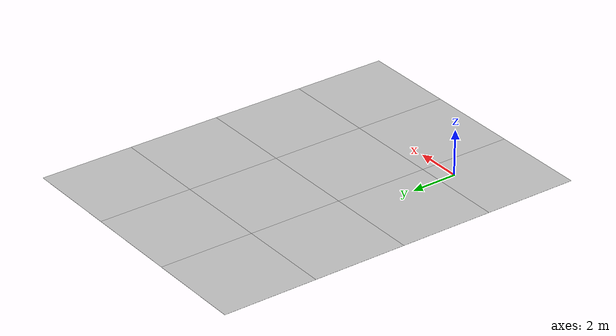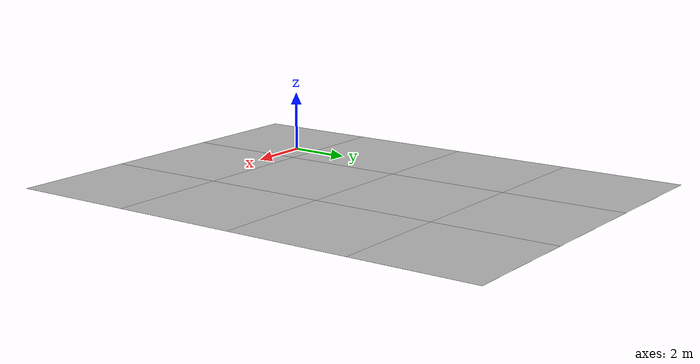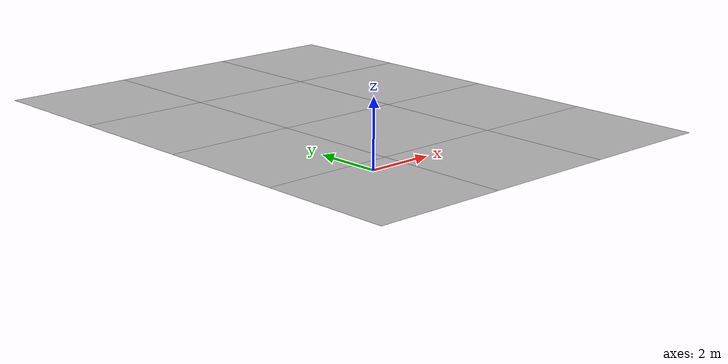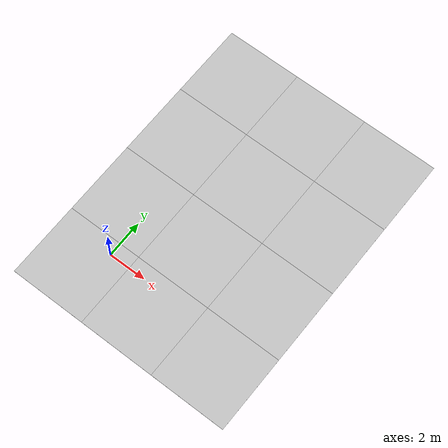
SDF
<sdf version='1.6'><world name='default'>
    <light name='sun_light' type='directional'>
      <pose frame=''>0 0 10 0 -0 0</pose>
      <diffuse>0.5 0.5 0.5 1</diffuse>
      <specular>0.1 0.1 0.1 1</specular>
      <direction>0.1 0.1 -0.9</direction>
      <attenuation>
        <range>20</range>
        <constant>0.5</constant>
        <linear>0.01</linear>
        <quadratic>0.001</quadratic>
      </attenuation>
      <cast_shadows>1</cast_shadows>
    </light>

    <model name='Tile/0-0'>
      <static>1</static>
      <link name='link'>
        <collision name='collision'>
          <geometry>
            <plane>
              <normal>0 0 1</normal>
              <size>4.096 4.096</size>
            </plane>
          </geometry>
          <surface>
            <friction>
              <ode>
                <mu>100</mu>
                <mu2>50</mu2>
              </ode>
              <torsional>
                <ode/>
              </torsional>
            </friction>
            <contact>
              <ode/>
            </contact>
            <bounce/>
          </surface>
          <max_contacts>10</max_contacts>
        </collision>
        <visual name='visual'>
          <cast_shadows>0</cast_shadows>
          <geometry>
            <plane>
              <normal>0 0 1</normal>
              <size>4.096 4.096</size>
            </plane>
          </geometry>
          <material>
            <script>
              <uri>file://materials/scripts</uri>
              <uri>file://materials/textures</uri>
              <name>Tile/d2a0822d2df9434b2a10c1df4b51959f07967b7722c4dc5c94304e16f4e1de29</name>
            </script>
          </material>
        </visual>
        <self_collide>0</self_collide>
        <enable_wind>0</enable_wind>
        <kinematic>0</kinematic>
      </link>
      <pose frame=''>-0.952 -1.3519999999999999 0 0 -0 0</pose>
    </model>

    <model name='Tile/0-1'>
      <static>1</static>
      <link name='link'>
        <collision name='collision'>
          <geometry>
            <plane>
              <normal>0 0 1</normal>
              <size>4.096 4.096</size>
            </plane>
          </geometry>
          <surface>
            <friction>
              <ode>
                <mu>100</mu>
                <mu2>50</mu2>
              </ode>
              <torsional>
                <ode/>
              </torsional>
            </friction>
            <contact>
              <ode/>
            </contact>
            <bounce/>
          </surface>
          <max_contacts>10</max_contacts>
        </collision>
        <visual name='visual'>
          <cast_shadows>0</cast_shadows>
          <geometry>
            <plane>
              <normal>0 0 1</normal>
              <size>4.096 4.096</size>
            </plane>
          </geometry>
          <material>
            <script>
              <uri>file://materials/scripts</uri>
              <uri>file://materials/textures</uri>
              <name>Tile/5eab350b8220ac9944dbdfa4ac3288c7c17e24c3bf5df0dfcf6173d64dae00a1</name>
            </script>
          </material>
        </visual>
        <self_collide>0</self_collide>
        <enable_wind>0</enable_wind>
        <kinematic>0</kinematic>
      </link>
      <pose frame=''>-0.952 2.744 0 0 -0 0</pose>
    </model>

    <model name='Tile/0-2'>
      <static>1</static>
      <link name='link'>
        <collision name='collision'>
          <geometry>
            <plane>
              <normal>0 0 1</normal>
              <size>4.096 4.096</size>
            </plane>
          </geometry>
          <surface>
            <friction>
              <ode>
                <mu>100</mu>
                <mu2>50</mu2>
              </ode>
              <torsional>
                <ode/>
              </torsional>
            </friction>
            <contact>
              <ode/>
            </contact>
            <bounce/>
          </surface>
          <max_contacts>10</max_contacts>
        </collision>
        <visual name='visual'>
          <cast_shadows>0</cast_shadows>
          <geometry>
            <plane>
              <normal>0 0 1</normal>
              <size>4.096 4.096</size>
            </plane>
          </geometry>
          <material>
            <script>
              <uri>file://materials/scripts</uri>
              <uri>file://materials/textures</uri>
              <name>Tile/5eab350b8220ac9944dbdfa4ac3288c7c17e24c3bf5df0dfcf6173d64dae00a1</name>
            </script>
          </material>
        </visual>
        <self_collide>0</self_collide>
        <enable_wind>0</enable_wind>
        <kinematic>0</kinematic>
      </link>
      <pose frame=''>-0.952 6.84 0 0 -0 0</pose>
    </model>

    <model name='Tile/0-3'>
      <static>1</static>
      <link name='link'>
        <collision name='collision'>
          <geometry>
            <plane>
              <normal>0 0 1</normal>
              <size>4.096 4.096</size>
            </plane>
          </geometry>
          <surface>
            <friction>
              <ode>
                <mu>100</mu>
                <mu2>50</mu2>
              </ode>
              <torsional>
                <ode/>
              </torsional>
            </friction>
            <contact>
              <ode/>
            </contact>
            <bounce/>
          </surface>
          <max_contacts>10</max_contacts>
        </collision>
        <visual name='visual'>
          <cast_shadows>0</cast_shadows>
          <geometry>
            <plane>
              <normal>0 0 1</normal>
              <size>4.096 4.096</size>
            </plane>
          </geometry>
          <material>
            <script>
              <uri>file://materials/scripts</uri>
              <uri>file://materials/textures</uri>
              <name>Tile/5eab350b8220ac9944dbdfa4ac3288c7c17e24c3bf5df0dfcf6173d64dae00a1</name>
            </script>
          </material>
        </visual>
        <self_collide>0</self_collide>
        <enable_wind>0</enable_wind>
        <kinematic>0</kinematic>
      </link>
      <pose frame=''>-0.952 10.936 0 0 -0 0</pose>
    </model>

    <model name='Tile/1-0'>
      <static>1</static>
      <link name='link'>
        <collision name='collision'>
          <geometry>
            <plane>
              <normal>0 0 1</normal>
              <size>4.096 4.096</size>
            </plane>
          </geometry>
          <surface>
            <friction>
              <ode>
                <mu>100</mu>
                <mu2>50</mu2>
              </ode>
              <torsional>
                <ode/>
              </torsional>
            </friction>
            <contact>
              <ode/>
            </contact>
            <bounce/>
          </surface>
          <max_contacts>10</max_contacts>
        </collision>
        <visual name='visual'>
          <cast_shadows>0</cast_shadows>
          <geometry>
            <plane>
              <normal>0 0 1</normal>
              <size>4.096 4.096</size>
            </plane>
          </geometry>
          <material>
            <script>
              <uri>file://materials/scripts</uri>
              <uri>file://materials/textures</uri>
              <name>Tile/f2ac75f6df7afef0f0746d94f099041fdd6aeb0155e2c6d1960db8cfe6f1943b</name>
            </script>
          </material>
        </visual>
        <self_collide>0</self_collide>
        <enable_wind>0</enable_wind>
        <kinematic>0</kinematic>
      </link>
      <pose frame=''>3.144 -1.3519999999999999 0 0 -0 0</pose>
    </model>

    <model name='Tile/1-1'>
      <static>1</static>
      <link name='link'>
        <collision name='collision'>
          <geometry>
            <plane>
              <normal>0 0 1</normal>
              <size>4.096 4.096</size>
            </plane>
          </geometry>
          <surface>
            <friction>
              <ode>
                <mu>100</mu>
                <mu2>50</mu2>
              </ode>
              <torsional>
                <ode/>
              </torsional>
            </friction>
            <contact>
              <ode/>
            </contact>
            <bounce/>
          </surface>
          <max_contacts>10</max_contacts>
        </collision>
        <visual name='visual'>
          <cast_shadows>0</cast_shadows>
          <geometry>
            <plane>
              <normal>0 0 1</normal>
              <size>4.096 4.096</size>
            </plane>
          </geometry>
          <material>
            <script>
              <uri>file://materials/scripts</uri>
              <uri>file://materials/textures</uri>
              <name>Tile/231a288856e6fa301caef17b59736a94ed968829b88531c994b8e806a4eaa918</name>
            </script>
          </material>
        </visual>
        <self_collide>0</self_collide>
        <enable_wind>0</enable_wind>
        <kinematic>0</kinematic>
      </link>
      <pose frame=''>3.144 2.744 0 0 -0 0</pose>
    </model>

    <model name='Tile/1-2'>
      <static>1</static>
      <link name='link'>
        <collision name='collision'>
          <geometry>
            <plane>
              <normal>0 0 1</normal>
              <size>4.096 4.096</size>
            </plane>
          </geometry>
          <surface>
            <friction>
              <ode>
                <mu>100</mu>
                <mu2>50</mu2>
              </ode>
              <torsional>
                <ode/>
              </torsional>
            </friction>
            <contact>
              <ode/>
            </contact>
            <bounce/>
          </surface>
          <max_contacts>10</max_contacts>
        </collision>
        <visual name='visual'>
          <cast_shadows>0</cast_shadows>
          <geometry>
            <plane>
              <normal>0 0 1</normal>
              <size>4.096 4.096</size>
            </plane>
          </geometry>
          <material>
            <script>
              <uri>file://materials/scripts</uri>
              <uri>file://materials/textures</uri>
              <name>Tile/e2a0fb15ab0a361d998f24e1a40a66d3945dcc9ecd94fd7fac52201be833db25</name>
            </script>
          </material>
        </visual>
        <self_collide>0</self_collide>
        <enable_wind>0</enable_wind>
        <kinematic>0</kinematic>
      </link>
      <pose frame=''>3.144 6.84 0 0 -0 0</pose>
    </model>

    <model name='Tile/1-3'>
      <static>1</static>
      <link name='link'>
        <collision name='collision'>
          <geometry>
            <plane>
              <normal>0 0 1</normal>
              <size>4.096 4.096</size>
            </plane>
          </geometry>
          <surface>
            <friction>
              <ode>
                <mu>100</mu>
                <mu2>50</mu2>
              </ode>
              <torsional>
                <ode/>
              </torsional>
            </friction>
            <contact>
              <ode/>
            </contact>
            <bounce/>
          </surface>
          <max_contacts>10</max_contacts>
        </collision>
        <visual name='visual'>
          <cast_shadows>0</cast_shadows>
          <geometry>
            <plane>
              <normal>0 0 1</normal>
              <size>4.096 4.096</size>
            </plane>
          </geometry>
          <material>
            <script>
              <uri>file://materials/scripts</uri>
              <uri>file://materials/textures</uri>
              <name>Tile/5eab350b8220ac9944dbdfa4ac3288c7c17e24c3bf5df0dfcf6173d64dae00a1</name>
            </script>
          </material>
        </visual>
        <self_collide>0</self_collide>
        <enable_wind>0</enable_wind>
        <kinematic>0</kinematic>
      </link>
      <pose frame=''>3.144 10.936 0 0 -0 0</pose>
    </model>

    <model name='Tile/2-0'>
      <static>1</static>
      <link name='link'>
        <collision name='collision'>
          <geometry>
            <plane>
              <normal>0 0 1</normal>
              <size>4.096 4.096</size>
            </plane>
          </geometry>
          <surface>
            <friction>
              <ode>
                <mu>100</mu>
                <mu2>50</mu2>
              </ode>
              <torsional>
                <ode/>
              </torsional>
            </friction>
            <contact>
              <ode/>
            </contact>
            <bounce/>
          </surface>
          <max_contacts>10</max_contacts>
        </collision>
        <visual name='visual'>
          <cast_shadows>0</cast_shadows>
          <geometry>
            <plane>
              <normal>0 0 1</normal>
              <size>4.096 4.096</size>
            </plane>
          </geometry>
          <material>
            <script>
              <uri>file://materials/scripts</uri>
              <uri>file://materials/textures</uri>
              <name>Tile/5eab350b8220ac9944dbdfa4ac3288c7c17e24c3bf5df0dfcf6173d64dae00a1</name>
            </script>
          </material>
        </visual>
        <self_collide>0</self_collide>
        <enable_wind>0</enable_wind>
        <kinematic>0</kinematic>
      </link>
      <pose frame=''>7.24 -1.3519999999999999 0 0 -0 0</pose>
    </model>

    <model name='Tile/2-1'>
      <static>1</static>
      <link name='link'>
        <collision name='collision'>
          <geometry>
            <plane>
              <normal>0 0 1</normal>
              <size>4.096 4.096</size>
            </plane>
          </geometry>
          <surface>
            <friction>
              <ode>
                <mu>100</mu>
                <mu2>50</mu2>
              </ode>
              <torsional>
                <ode/>
              </torsional>
            </friction>
            <contact>
              <ode/>
            </contact>
            <bounce/>
          </surface>
          <max_contacts>10</max_contacts>
        </collision>
        <visual name='visual'>
          <cast_shadows>0</cast_shadows>
          <geometry>
            <plane>
              <normal>0 0 1</normal>
              <size>4.096 4.096</size>
            </plane>
          </geometry>
          <material>
            <script>
              <uri>file://materials/scripts</uri>
              <uri>file://materials/textures</uri>
              <name>Tile/5eab350b8220ac9944dbdfa4ac3288c7c17e24c3bf5df0dfcf6173d64dae00a1</name>
            </script>
          </material>
        </visual>
        <self_collide>0</self_collide>
        <enable_wind>0</enable_wind>
        <kinematic>0</kinematic>
      </link>
      <pose frame=''>7.24 2.744 0 0 -0 0</pose>
    </model>

    <model name='Tile/2-2'>
      <static>1</static>
      <link name='link'>
        <collision name='collision'>
          <geometry>
            <plane>
              <normal>0 0 1</normal>
              <size>4.096 4.096</size>
            </plane>
          </geometry>
          <surface>
            <friction>
              <ode>
                <mu>100</mu>
                <mu2>50</mu2>
              </ode>
              <torsional>
                <ode/>
              </torsional>
            </friction>
            <contact>
              <ode/>
            </contact>
            <bounce/>
          </surface>
          <max_contacts>10</max_contacts>
        </collision>
        <visual name='visual'>
          <cast_shadows>0</cast_shadows>
          <geometry>
            <plane>
              <normal>0 0 1</normal>
              <size>4.096 4.096</size>
            </plane>
          </geometry>
          <material>
            <script>
              <uri>file://materials/scripts</uri>
              <uri>file://materials/textures</uri>
              <name>Tile/5eab350b8220ac9944dbdfa4ac3288c7c17e24c3bf5df0dfcf6173d64dae00a1</name>
            </script>
          </material>
        </visual>
        <self_collide>0</self_collide>
        <enable_wind>0</enable_wind>
        <kinematic>0</kinematic>
      </link>
      <pose frame=''>7.24 6.84 0 0 -0 0</pose>
    </model>

    <model name='Tile/2-3'>
      <static>1</static>
      <link name='link'>
        <collision name='collision'>
          <geometry>
            <plane>
              <normal>0 0 1</normal>
              <size>4.096 4.096</size>
            </plane>
          </geometry>
          <surface>
            <friction>
              <ode>
                <mu>100</mu>
                <mu2>50</mu2>
              </ode>
              <torsional>
                <ode/>
              </torsional>
            </friction>
            <contact>
              <ode/>
            </contact>
            <bounce/>
          </surface>
          <max_contacts>10</max_contacts>
        </collision>
        <visual name='visual'>
          <cast_shadows>0</cast_shadows>
          <geometry>
            <plane>
              <normal>0 0 1</normal>
              <size>4.096 4.096</size>
            </plane>
          </geometry>
          <material>
            <script>
              <uri>file://materials/scripts</uri>
              <uri>file://materials/textures</uri>
              <name>Tile/5eab350b8220ac9944dbdfa4ac3288c7c17e24c3bf5df0dfcf6173d64dae00a1</name>
            </script>
          </material>
        </visual>
        <self_collide>0</self_collide>
        <enable_wind>0</enable_wind>
        <kinematic>0</kinematic>
      </link>
      <pose frame=''>7.24 10.936 0 0 -0 0</pose>
    </model>
    </world></sdf>
